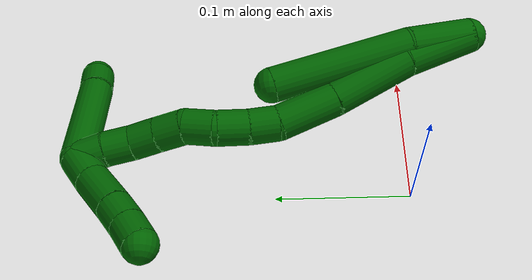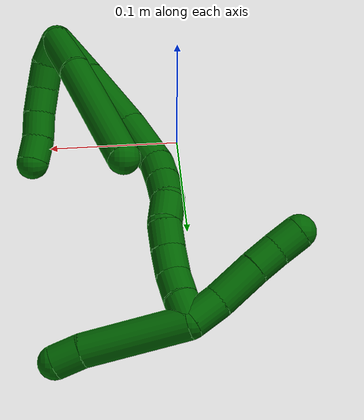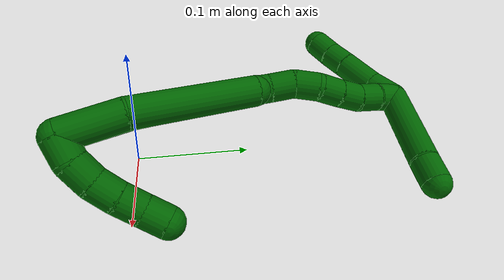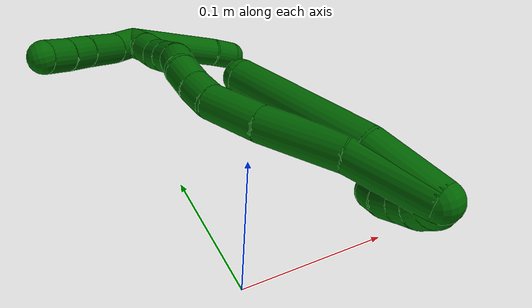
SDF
<sdf version="1.7">
 <world name="default">
  <model name="6">
   <static>0</static>
   <link name="6">
    <collision name="collision-cylinder-e_1_2_8">
     <pose>-0.01382 0.018517 -0.006107 -1.88937 -0.616608 0.829616</pose>
     <geometry><cylinder><radius>0.0125</radius><length>0.047798</length></cylinder></geometry>
     <surface>
      <friction><ode><mu>1.16</mu><mu2>1.16</mu2><slip1>0</slip1><slip2>0</slip2></ode></friction>
      <contact><ode><kp>1e+06</kp><kd>1</kd><max_vel>0</max_vel><min_depth>0.001</min_depth></ode></contact>
     </surface>
    </collision>
    <visual name="visual-cylinder-e_1_2_8">
     <pose>-0.01382 0.018517 -0.006107 -1.88937 -0.616608 0.829616</pose>
     <geometry><cylinder><radius>0.0125</radius><length>0.047798</length></cylinder></geometry>
     <material><ambient>0 0.392157 0.003922 1</ambient></material>
    </visual>
    <collision name="collision-cylinder-e_2_8_6">
     <pose>-0.049567 0.08053 -0.02766 -1.91203 -0.443489 0.618154</pose>
     <geometry><cylinder><radius>0.0125</radius><length>0.102202</length></cylinder></geometry>
     <surface>
      <friction><ode><mu>1.16</mu><mu2>1.16</mu2><slip1>0</slip1><slip2>0</slip2></ode></friction>
      <contact><ode><kp>1e+06</kp><kd>1</kd><max_vel>0</max_vel><min_depth>0.001</min_depth></ode></contact>
     </surface>
    </collision>
    <visual name="visual-cylinder-e_2_8_6">
     <pose>-0.049567 0.08053 -0.02766 -1.91203 -0.443489 0.618154</pose>
     <geometry><cylinder><radius>0.0125</radius><length>0.102202</length></cylinder></geometry>
     <material><ambient>0 0.392157 0.003922 1</ambient></material>
    </visual>
    <collision name="collision-cylinder-e_1_2_9">
     <pose>0.00557 0.007376 0.003817 -1.09328 0.590763 -0.366162</pose>
     <geometry><cylinder><radius>0.0125</radius><length>0.02</length></cylinder></geometry>
     <surface>
      <friction><ode><mu>1.16</mu><mu2>1.16</mu2><slip1>0</slip1><slip2>0</slip2></ode></friction>
      <contact><ode><kp>1e+06</kp><kd>1</kd><max_vel>0</max_vel><min_depth>0.001</min_depth></ode></contact>
     </surface>
    </collision>
    <visual name="visual-cylinder-e_1_2_9">
     <pose>0.00557 0.007376 0.003817 -1.09328 0.590763 -0.366162</pose>
     <geometry><cylinder><radius>0.0125</radius><length>0.02</length></cylinder></geometry>
     <material><ambient>0 0.392157 0.003922 1</ambient></material>
    </visual>
    <collision name="collision-cylinder-e_2_9_10">
     <pose>0.015019 0.023811 0.009336 -1.38498 0.398379 -0.331829</pose>
     <geometry><cylinder><radius>0.0125</radius><length>0.02</length></cylinder></geometry>
     <surface>
      <friction><ode><mu>1.16</mu><mu2>1.16</mu2><slip1>0</slip1><slip2>0</slip2></ode></friction>
      <contact><ode><kp>1e+06</kp><kd>1</kd><max_vel>0</max_vel><min_depth>0.001</min_depth></ode></contact>
     </surface>
    </collision>
    <visual name="visual-cylinder-e_2_9_10">
     <pose>0.015019 0.023811 0.009336 -1.38498 0.398379 -0.331829</pose>
     <geometry><cylinder><radius>0.0125</radius><length>0.02</length></cylinder></geometry>
     <material><ambient>0 0.392157 0.003922 1</ambient></material>
    </visual>
    <collision name="collision-cylinder-e_3_10_11">
     <pose>0.020766 0.042574 0.012565 -1.41489 0.187878 -0.160781</pose>
     <geometry><cylinder><radius>0.0125</radius><length>0.02</length></cylinder></geometry>
     <surface>
      <friction><ode><mu>1.16</mu><mu2>1.16</mu2><slip1>0</slip1><slip2>0</slip2></ode></friction>
      <contact><ode><kp>1e+06</kp><kd>1</kd><max_vel>0</max_vel><min_depth>0.001</min_depth></ode></contact>
     </surface>
    </collision>
    <visual name="visual-cylinder-e_3_10_11">
     <pose>0.020766 0.042574 0.012565 -1.41489 0.187878 -0.160781</pose>
     <geometry><cylinder><radius>0.0125</radius><length>0.02</length></cylinder></geometry>
     <material><ambient>0 0.392157 0.003922 1</ambient></material>
    </visual>
    <collision name="collision-cylinder-e_4_11_12">
     <pose>0.024031 0.062166 0.014619 -1.51735 0.140131 -0.132857</pose>
     <geometry><cylinder><radius>0.0125</radius><length>0.02</length></cylinder></geometry>
     <surface>
      <friction><ode><mu>1.16</mu><mu2>1.16</mu2><slip1>0</slip1><slip2>0</slip2></ode></friction>
      <contact><ode><kp>1e+06</kp><kd>1</kd><max_vel>0</max_vel><min_depth>0.001</min_depth></ode></contact>
     </surface>
    </collision>
    <visual name="visual-cylinder-e_4_11_12">
     <pose>0.024031 0.062166 0.014619 -1.51735 0.140131 -0.132857</pose>
     <geometry><cylinder><radius>0.0125</radius><length>0.02</length></cylinder></geometry>
     <material><ambient>0 0.392157 0.003922 1</ambient></material>
    </visual>
    <collision name="collision-cylinder-e_5_12_5">
     <pose>0.025724 0.081793 0.017401 -1.34343 0.029712 -0.023623</pose>
     <geometry><cylinder><radius>0.0125</radius><length>0.02</length></cylinder></geometry>
     <surface>
      <friction><ode><mu>1.16</mu><mu2>1.16</mu2><slip1>0</slip1><slip2>0</slip2></ode></friction>
      <contact><ode><kp>1e+06</kp><kd>1</kd><max_vel>0</max_vel><min_depth>0.001</min_depth></ode></contact>
     </surface>
    </collision>
    <visual name="visual-cylinder-e_5_12_5">
     <pose>0.025724 0.081793 0.017401 -1.34343 0.029712 -0.023623</pose>
     <geometry><cylinder><radius>0.0125</radius><length>0.02</length></cylinder></geometry>
     <material><ambient>0 0.392157 0.003922 1</ambient></material>
    </visual>
    <collision name="collision-cylinder-e_1_2_13">
     <pose>-0.012612 0.020641 -0.011119 -2.06492 -0.493525 0.798339</pose>
     <geometry><cylinder><radius>0.0125</radius><length>0.053245</length></cylinder></geometry>
     <surface>
      <friction><ode><mu>1.16</mu><mu2>1.16</mu2><slip1>0</slip1><slip2>0</slip2></ode></friction>
      <contact><ode><kp>1e+06</kp><kd>1</kd><max_vel>0</max_vel><min_depth>0.001</min_depth></ode></contact>
     </surface>
    </collision>
    <visual name="visual-cylinder-e_1_2_13">
     <pose>-0.012612 0.020641 -0.011119 -2.06492 -0.493525 0.798339</pose>
     <geometry><cylinder><radius>0.0125</radius><length>0.053245</length></cylinder></geometry>
     <material><ambient>0 0.392157 0.003922 1</ambient></material>
    </visual>
    <collision name="collision-cylinder-e_2_13_14">
     <pose>-0.035237 0.065189 -0.036489 -2.10836 -0.345371 0.595806</pose>
     <geometry><cylinder><radius>0.0125</radius><length>0.059157</length></cylinder></geometry>
     <surface>
      <friction><ode><mu>1.16</mu><mu2>1.16</mu2><slip1>0</slip1><slip2>0</slip2></ode></friction>
      <contact><ode><kp>1e+06</kp><kd>1</kd><max_vel>0</max_vel><min_depth>0.001</min_depth></ode></contact>
     </surface>
    </collision>
    <visual name="visual-cylinder-e_2_13_14">
     <pose>-0.035237 0.065189 -0.036489 -2.10836 -0.345371 0.595806</pose>
     <geometry><cylinder><radius>0.0125</radius><length>0.059157</length></cylinder></geometry>
     <material><ambient>0 0.392157 0.003922 1</ambient></material>
    </visual>
    <collision name="collision-cylinder-e_3_14_15">
     <pose>-0.053381 0.106885 -0.05941 -2.02424 -0.389777 0.611736</pose>
     <geometry><cylinder><radius>0.0125</radius><length>0.04279</length></cylinder></geometry>
     <surface>
      <friction><ode><mu>1.16</mu><mu2>1.16</mu2><slip1>0</slip1><slip2>0</slip2></ode></friction>
      <contact><ode><kp>1e+06</kp><kd>1</kd><max_vel>0</max_vel><min_depth>0.001</min_depth></ode></contact>
     </surface>
    </collision>
    <visual name="visual-cylinder-e_3_14_15">
     <pose>-0.053381 0.106885 -0.05941 -2.02424 -0.389777 0.611736</pose>
     <geometry><cylinder><radius>0.0125</radius><length>0.04279</length></cylinder></geometry>
     <material><ambient>0 0.392157 0.003922 1</ambient></material>
    </visual>
    <collision name="collision-cylinder-e_4_15_16">
     <pose>-0.066513 0.133563 -0.069595 -1.73969 -0.506621 0.595275</pose>
     <geometry><cylinder><radius>0.0125</radius><length>0.020621</length></cylinder></geometry>
     <surface>
      <friction><ode><mu>1.16</mu><mu2>1.16</mu2><slip1>0</slip1><slip2>0</slip2></ode></friction>
      <contact><ode><kp>1e+06</kp><kd>1</kd><max_vel>0</max_vel><min_depth>0.001</min_depth></ode></contact>
     </surface>
    </collision>
    <visual name="visual-cylinder-e_4_15_16">
     <pose>-0.066513 0.133563 -0.069595 -1.73969 -0.506621 0.595275</pose>
     <geometry><cylinder><radius>0.0125</radius><length>0.020621</length></cylinder></geometry>
     <material><ambient>0 0.392157 0.003922 1</ambient></material>
    </visual>
    <collision name="collision-cylinder-e_5_16_17">
     <pose>-0.07747 0.151788 -0.071921 -1.65737 -0.565854 0.614052</pose>
     <geometry><cylinder><radius>0.0125</radius><length>0.022209</length></cylinder></geometry>
     <surface>
      <friction><ode><mu>1.16</mu><mu2>1.16</mu2><slip1>0</slip1><slip2>0</slip2></ode></friction>
      <contact><ode><kp>1e+06</kp><kd>1</kd><max_vel>0</max_vel><min_depth>0.001</min_depth></ode></contact>
     </surface>
    </collision>
    <visual name="visual-cylinder-e_5_16_17">
     <pose>-0.07747 0.151788 -0.071921 -1.65737 -0.565854 0.614052</pose>
     <geometry><cylinder><radius>0.0125</radius><length>0.022209</length></cylinder></geometry>
     <material><ambient>0 0.392157 0.003922 1</ambient></material>
    </visual>
    <collision name="collision-cylinder-e_6_17_18">
     <pose>-0.086808 0.171253 -0.070883 -1.39024 -0.317672 0.265611</pose>
     <geometry><cylinder><radius>0.0125</radius><length>0.021671</length></cylinder></geometry>
     <surface>
      <friction><ode><mu>1.16</mu><mu2>1.16</mu2><slip1>0</slip1><slip2>0</slip2></ode></friction>
      <contact><ode><kp>1e+06</kp><kd>1</kd><max_vel>0</max_vel><min_depth>0.001</min_depth></ode></contact>
     </surface>
    </collision>
    <visual name="visual-cylinder-e_6_17_18">
     <pose>-0.086808 0.171253 -0.070883 -1.39024 -0.317672 0.265611</pose>
     <geometry><cylinder><radius>0.0125</radius><length>0.021671</length></cylinder></geometry>
     <material><ambient>0 0.392157 0.003922 1</ambient></material>
    </visual>
    <collision name="collision-cylinder-e_7_18_19">
     <pose>-0.09112 0.191359 -0.069876 -1.65491 -0.092387 0.100491</pose>
     <geometry><cylinder><radius>0.0125</radius><length>0.020117</length></cylinder></geometry>
     <surface>
      <friction><ode><mu>1.16</mu><mu2>1.16</mu2><slip1>0</slip1><slip2>0</slip2></ode></friction>
      <contact><ode><kp>1e+06</kp><kd>1</kd><max_vel>0</max_vel><min_depth>0.001</min_depth></ode></contact>
     </surface>
    </collision>
    <visual name="visual-cylinder-e_7_18_19">
     <pose>-0.09112 0.191359 -0.069876 -1.65491 -0.092387 0.100491</pose>
     <geometry><cylinder><radius>0.0125</radius><length>0.020117</length></cylinder></geometry>
     <material><ambient>0 0.392157 0.003922 1</ambient></material>
    </visual>
    <collision name="collision-cylinder-e_8_19_20">
     <pose>-0.093328 0.211221 -0.072001 -1.69993 -0.127727 0.145328</pose>
     <geometry><cylinder><radius>0.0125</radius><length>0.020093</length></cylinder></geometry>
     <surface>
      <friction><ode><mu>1.16</mu><mu2>1.16</mu2><slip1>0</slip1><slip2>0</slip2></ode></friction>
      <contact><ode><kp>1e+06</kp><kd>1</kd><max_vel>0</max_vel><min_depth>0.001</min_depth></ode></contact>
     </surface>
    </collision>
    <visual name="visual-cylinder-e_8_19_20">
     <pose>-0.093328 0.211221 -0.072001 -1.69993 -0.127727 0.145328</pose>
     <geometry><cylinder><radius>0.0125</radius><length>0.020093</length></cylinder></geometry>
     <material><ambient>0 0.392157 0.003922 1</ambient></material>
    </visual>
    <collision name="collision-cylinder-e_9_20_21">
     <pose>-0.098158 0.230281 -0.075182 -1.77473 -0.362088 0.442208</pose>
     <geometry><cylinder><radius>0.0125</radius><length>0.020045</length></cylinder></geometry>
     <surface>
      <friction><ode><mu>1.16</mu><mu2>1.16</mu2><slip1>0</slip1><slip2>0</slip2></ode></friction>
      <contact><ode><kp>1e+06</kp><kd>1</kd><max_vel>0</max_vel><min_depth>0.001</min_depth></ode></contact>
     </surface>
    </collision>
    <visual name="visual-cylinder-e_9_20_21">
     <pose>-0.098158 0.230281 -0.075182 -1.77473 -0.362088 0.442208</pose>
     <geometry><cylinder><radius>0.0125</radius><length>0.020045</length></cylinder></geometry>
     <material><ambient>0 0.392157 0.003922 1</ambient></material>
    </visual>
    <collision name="collision-cylinder-e_10_21_1">
     <pose>-0.10447 0.248744 -0.079668 -1.8426 -0.279018 0.365687</pose>
     <geometry><cylinder><radius>0.0125</radius><length>0.020052</length></cylinder></geometry>
     <surface>
      <friction><ode><mu>1.16</mu><mu2>1.16</mu2><slip1>0</slip1><slip2>0</slip2></ode></friction>
      <contact><ode><kp>1e+06</kp><kd>1</kd><max_vel>0</max_vel><min_depth>0.001</min_depth></ode></contact>
     </surface>
    </collision>
    <visual name="visual-cylinder-e_10_21_1">
     <pose>-0.10447 0.248744 -0.079668 -1.8426 -0.279018 0.365687</pose>
     <geometry><cylinder><radius>0.0125</radius><length>0.020052</length></cylinder></geometry>
     <material><ambient>0 0.392157 0.003922 1</ambient></material>
    </visual>
    <collision name="collision-cylinder-e_1_1_22">
     <pose>-0.107193 0.250691 -0.092219 2.50677 0.003034 0.009236</pose>
     <geometry><cylinder><radius>0.0125</radius><length>0.024747</length></cylinder></geometry>
     <surface>
      <friction><ode><mu>1.16</mu><mu2>1.16</mu2><slip1>0</slip1><slip2>0</slip2></ode></friction>
      <contact><ode><kp>1e+06</kp><kd>1</kd><max_vel>0</max_vel><min_depth>0.001</min_depth></ode></contact>
     </surface>
    </collision>
    <visual name="visual-cylinder-e_1_1_22">
     <pose>-0.107193 0.250691 -0.092219 2.50677 0.003034 0.009236</pose>
     <geometry><cylinder><radius>0.0125</radius><length>0.024747</length></cylinder></geometry>
     <material><ambient>0 0.392157 0.003922 1</ambient></material>
    </visual>
    <collision name="collision-cylinder-e_2_22_23">
     <pose>-0.109009 0.232085 -0.115012 2.42095 -0.108069 -0.285162</pose>
     <geometry><cylinder><radius>0.0125</radius><length>0.034353</length></cylinder></geometry>
     <surface>
      <friction><ode><mu>1.16</mu><mu2>1.16</mu2><slip1>0</slip1><slip2>0</slip2></ode></friction>
      <contact><ode><kp>1e+06</kp><kd>1</kd><max_vel>0</max_vel><min_depth>0.001</min_depth></ode></contact>
     </surface>
    </collision>
    <visual name="visual-cylinder-e_2_22_23">
     <pose>-0.109009 0.232085 -0.115012 2.42095 -0.108069 -0.285162</pose>
     <geometry><cylinder><radius>0.0125</radius><length>0.034353</length></cylinder></geometry>
     <material><ambient>0 0.392157 0.003922 1</ambient></material>
    </visual>
    <collision name="collision-cylinder-e_3_23_24">
     <pose>-0.111673 0.214495 -0.135694 2.46365 -0.080333 -0.226985</pose>
     <geometry><cylinder><radius>0.0125</radius><length>0.020227</length></cylinder></geometry>
     <surface>
      <friction><ode><mu>1.16</mu><mu2>1.16</mu2><slip1>0</slip1><slip2>0</slip2></ode></friction>
      <contact><ode><kp>1e+06</kp><kd>1</kd><max_vel>0</max_vel><min_depth>0.001</min_depth></ode></contact>
     </surface>
    </collision>
    <visual name="visual-cylinder-e_3_23_24">
     <pose>-0.111673 0.214495 -0.135694 2.46365 -0.080333 -0.226985</pose>
     <geometry><cylinder><radius>0.0125</radius><length>0.020227</length></cylinder></geometry>
     <material><ambient>0 0.392157 0.003922 1</ambient></material>
    </visual>
    <collision name="collision-cylinder-e_4_24_4">
     <pose>-0.113808 0.202088 -0.151797 2.50625 -0.128374 -0.386093</pose>
     <geometry><cylinder><radius>0.0125</radius><length>0.020674</length></cylinder></geometry>
     <surface>
      <friction><ode><mu>1.16</mu><mu2>1.16</mu2><slip1>0</slip1><slip2>0</slip2></ode></friction>
      <contact><ode><kp>1e+06</kp><kd>1</kd><max_vel>0</max_vel><min_depth>0.001</min_depth></ode></contact>
     </surface>
    </collision>
    <visual name="visual-cylinder-e_4_24_4">
     <pose>-0.113808 0.202088 -0.151797 2.50625 -0.128374 -0.386093</pose>
     <geometry><cylinder><radius>0.0125</radius><length>0.020674</length></cylinder></geometry>
     <material><ambient>0 0.392157 0.003922 1</ambient></material>
    </visual>
    <collision name="collision-cylinder-e_1_1_25">
     <pose>-0.093544 0.263977 -0.045849 -0.161964 0.355273 -0.029139</pose>
     <geometry><cylinder><radius>0.0125</radius><length>0.078693</length></cylinder></geometry>
     <surface>
      <friction><ode><mu>1.16</mu><mu2>1.16</mu2><slip1>0</slip1><slip2>0</slip2></ode></friction>
      <contact><ode><kp>1e+06</kp><kd>1</kd><max_vel>0</max_vel><min_depth>0.001</min_depth></ode></contact>
     </surface>
    </collision>
    <visual name="visual-cylinder-e_1_1_25">
     <pose>-0.093544 0.263977 -0.045849 -0.161964 0.355273 -0.029139</pose>
     <geometry><cylinder><radius>0.0125</radius><length>0.078693</length></cylinder></geometry>
     <material><ambient>0 0.392157 0.003922 1</ambient></material>
    </visual>
    <collision name="collision-cylinder-e_2_25_3">
     <pose>-0.075773 0.272938 -7.6e-05 -0.311079 0.393548 -0.062499</pose>
     <geometry><cylinder><radius>0.0125</radius><length>0.021307</length></cylinder></geometry>
     <surface>
      <friction><ode><mu>1.16</mu><mu2>1.16</mu2><slip1>0</slip1><slip2>0</slip2></ode></friction>
      <contact><ode><kp>1e+06</kp><kd>1</kd><max_vel>0</max_vel><min_depth>0.001</min_depth></ode></contact>
     </surface>
    </collision>
    <visual name="visual-cylinder-e_2_25_3">
     <pose>-0.075773 0.272938 -7.6e-05 -0.311079 0.393548 -0.062499</pose>
     <geometry><cylinder><radius>0.0125</radius><length>0.021307</length></cylinder></geometry>
     <material><ambient>0 0.392157 0.003922 1</ambient></material>
    </visual>
    <collision name="collision-sphere-3">
     <pose>-0.071687 0.275949 0.009291 0 -0 0</pose>
     <geometry><sphere><radius>0.0125</radius></sphere></geometry>
     <surface>
      <friction><ode><mu>1.16</mu><mu2>1.16</mu2><slip1>0</slip1><slip2>0</slip2></ode></friction>
      <contact><ode><kp>1e+06</kp><kd>1</kd><max_vel>0</max_vel><min_depth>0.001</min_depth></ode></contact>
     </surface>
    </collision>
    <visual name="visual-sphere-3">
     <pose>-0.071687 0.275949 0.009291 0 -0 0</pose>
     <geometry><sphere><radius>0.0125</radius></sphere></geometry>
     <material><ambient>0 0.392157 0.003922 1</ambient></material>
    </visual>
    <collision name="collision-sphere-25">
     <pose>-0.079858 0.269926 -0.009443 0 -0 0</pose>
     <geometry><sphere><radius>0.0125</radius></sphere></geometry>
     <surface>
      <friction><ode><mu>1.16</mu><mu2>1.16</mu2><slip1>0</slip1><slip2>0</slip2></ode></friction>
      <contact><ode><kp>1e+06</kp><kd>1</kd><max_vel>0</max_vel><min_depth>0.001</min_depth></ode></contact>
     </surface>
    </collision>
    <visual name="visual-sphere-25">
     <pose>-0.079858 0.269926 -0.009443 0 -0 0</pose>
     <geometry><sphere><radius>0.0125</radius></sphere></geometry>
     <material><ambient>0 0.392157 0.003922 1</ambient></material>
    </visual>
    <collision name="collision-sphere-4">
     <pose>-0.115131 0.196004 -0.160049 0 -0 0</pose>
     <geometry><sphere><radius>0.0125</radius></sphere></geometry>
     <surface>
      <friction><ode><mu>1.16</mu><mu2>1.16</mu2><slip1>0</slip1><slip2>0</slip2></ode></friction>
      <contact><ode><kp>1e+06</kp><kd>1</kd><max_vel>0</max_vel><min_depth>0.001</min_depth></ode></contact>
     </surface>
    </collision>
    <visual name="visual-sphere-4">
     <pose>-0.115131 0.196004 -0.160049 0 -0 0</pose>
     <geometry><sphere><radius>0.0125</radius></sphere></geometry>
     <material><ambient>0 0.392157 0.003922 1</ambient></material>
    </visual>
    <collision name="collision-sphere-24">
     <pose>-0.112484 0.208172 -0.143546 0 -0 0</pose>
     <geometry><sphere><radius>0.0125</radius></sphere></geometry>
     <surface>
      <friction><ode><mu>1.16</mu><mu2>1.16</mu2><slip1>0</slip1><slip2>0</slip2></ode></friction>
      <contact><ode><kp>1e+06</kp><kd>1</kd><max_vel>0</max_vel><min_depth>0.001</min_depth></ode></contact>
     </surface>
    </collision>
    <visual name="visual-sphere-24">
     <pose>-0.112484 0.208172 -0.143546 0 -0 0</pose>
     <geometry><sphere><radius>0.0125</radius></sphere></geometry>
     <material><ambient>0 0.392157 0.003922 1</ambient></material>
    </visual>
    <collision name="collision-sphere-23">
     <pose>-0.110861 0.220817 -0.127843 0 -0 0</pose>
     <geometry><sphere><radius>0.0125</radius></sphere></geometry>
     <surface>
      <friction><ode><mu>1.16</mu><mu2>1.16</mu2><slip1>0</slip1><slip2>0</slip2></ode></friction>
      <contact><ode><kp>1e+06</kp><kd>1</kd><max_vel>0</max_vel><min_depth>0.001</min_depth></ode></contact>
     </surface>
    </collision>
    <visual name="visual-sphere-23">
     <pose>-0.110861 0.220817 -0.127843 0 -0 0</pose>
     <geometry><sphere><radius>0.0125</radius></sphere></geometry>
     <material><ambient>0 0.392157 0.003922 1</ambient></material>
    </visual>
    <collision name="collision-sphere-22">
     <pose>-0.107156 0.243353 -0.102181 0 -0 0</pose>
     <geometry><sphere><radius>0.0125</radius></sphere></geometry>
     <surface>
      <friction><ode><mu>1.16</mu><mu2>1.16</mu2><slip1>0</slip1><slip2>0</slip2></ode></friction>
      <contact><ode><kp>1e+06</kp><kd>1</kd><max_vel>0</max_vel><min_depth>0.001</min_depth></ode></contact>
     </surface>
    </collision>
    <visual name="visual-sphere-22">
     <pose>-0.107156 0.243353 -0.102181 0 -0 0</pose>
     <geometry><sphere><radius>0.0125</radius></sphere></geometry>
     <material><ambient>0 0.392157 0.003922 1</ambient></material>
    </visual>
    <collision name="collision-sphere-1">
     <pose>-0.107231 0.258029 -0.082256 0 -0 0</pose>
     <geometry><sphere><radius>0.0125</radius></sphere></geometry>
     <surface>
      <friction><ode><mu>1.16</mu><mu2>1.16</mu2><slip1>0</slip1><slip2>0</slip2></ode></friction>
      <contact><ode><kp>1e+06</kp><kd>1</kd><max_vel>0</max_vel><min_depth>0.001</min_depth></ode></contact>
     </surface>
    </collision>
    <visual name="visual-sphere-1">
     <pose>-0.107231 0.258029 -0.082256 0 -0 0</pose>
     <geometry><sphere><radius>0.0125</radius></sphere></geometry>
     <material><ambient>0 0.392157 0.003922 1</ambient></material>
    </visual>
    <collision name="collision-sphere-21">
     <pose>-0.101708 0.239459 -0.077081 0 -0 0</pose>
     <geometry><sphere><radius>0.0125</radius></sphere></geometry>
     <surface>
      <friction><ode><mu>1.16</mu><mu2>1.16</mu2><slip1>0</slip1><slip2>0</slip2></ode></friction>
      <contact><ode><kp>1e+06</kp><kd>1</kd><max_vel>0</max_vel><min_depth>0.001</min_depth></ode></contact>
     </surface>
    </collision>
    <visual name="visual-sphere-21">
     <pose>-0.101708 0.239459 -0.077081 0 -0 0</pose>
     <geometry><sphere><radius>0.0125</radius></sphere></geometry>
     <material><ambient>0 0.392157 0.003922 1</ambient></material>
    </visual>
    <collision name="collision-sphere-11">
     <pose>0.022634 0.052279 0.01409 0 -0 0</pose>
     <geometry><sphere><radius>0.0125</radius></sphere></geometry>
     <surface>
      <friction><ode><mu>1.16</mu><mu2>1.16</mu2><slip1>0</slip1><slip2>0</slip2></ode></friction>
      <contact><ode><kp>1e+06</kp><kd>1</kd><max_vel>0</max_vel><min_depth>0.001</min_depth></ode></contact>
     </surface>
    </collision>
    <visual name="visual-sphere-11">
     <pose>0.022634 0.052279 0.01409 0 -0 0</pose>
     <geometry><sphere><radius>0.0125</radius></sphere></geometry>
     <material><ambient>0 0.392157 0.003922 1</ambient></material>
    </visual>
    <collision name="collision-sphere-10">
     <pose>0.018898 0.032869 0.011039 0 -0 0</pose>
     <geometry><sphere><radius>0.0125</radius></sphere></geometry>
     <surface>
      <friction><ode><mu>1.16</mu><mu2>1.16</mu2><slip1>0</slip1><slip2>0</slip2></ode></friction>
      <contact><ode><kp>1e+06</kp><kd>1</kd><max_vel>0</max_vel><min_depth>0.001</min_depth></ode></contact>
     </surface>
    </collision>
    <visual name="visual-sphere-10">
     <pose>0.018898 0.032869 0.011039 0 -0 0</pose>
     <geometry><sphere><radius>0.0125</radius></sphere></geometry>
     <material><ambient>0 0.392157 0.003922 1</ambient></material>
    </visual>
    <collision name="collision-sphere-6">
     <pose>-0.071494 0.124026 -0.043107 0 -0 0</pose>
     <geometry><sphere><radius>0.0125</radius></sphere></geometry>
     <surface>
      <friction><ode><mu>1.16</mu><mu2>1.16</mu2><slip1>0</slip1><slip2>0</slip2></ode></friction>
      <contact><ode><kp>1e+06</kp><kd>1</kd><max_vel>0</max_vel><min_depth>0.001</min_depth></ode></contact>
     </surface>
    </collision>
    <visual name="visual-sphere-6">
     <pose>-0.071494 0.124026 -0.043107 0 -0 0</pose>
     <geometry><sphere><radius>0.0125</radius></sphere></geometry>
     <material><ambient>0 0.392157 0.003922 1</ambient></material>
    </visual>
    <collision name="collision-sphere-9">
     <pose>0.01114 0.014752 0.007634 0 -0 0</pose>
     <geometry><sphere><radius>0.0125</radius></sphere></geometry>
     <surface>
      <friction><ode><mu>1.16</mu><mu2>1.16</mu2><slip1>0</slip1><slip2>0</slip2></ode></friction>
      <contact><ode><kp>1e+06</kp><kd>1</kd><max_vel>0</max_vel><min_depth>0.001</min_depth></ode></contact>
     </surface>
    </collision>
    <visual name="visual-sphere-9">
     <pose>0.01114 0.014752 0.007634 0 -0 0</pose>
     <geometry><sphere><radius>0.0125</radius></sphere></geometry>
     <material><ambient>0 0.392157 0.003922 1</ambient></material>
    </visual>
    <collision name="collision-sphere-2">
     <geometry><sphere><radius>0.0125</radius></sphere></geometry>
     <surface>
      <friction><ode><mu>1.16</mu><mu2>1.16</mu2><slip1>0</slip1><slip2>0</slip2></ode></friction>
      <contact><ode><kp>1e+06</kp><kd>1</kd><max_vel>0</max_vel><min_depth>0.001</min_depth></ode></contact>
     </surface>
    </collision>
    <visual name="visual-sphere-2">
     <geometry><sphere><radius>0.0125</radius></sphere></geometry>
     <material><ambient>0 0.392157 0.003922 1</ambient></material>
    </visual>
    <collision name="collision-sphere-19">
     <pose>-0.092048 0.201339 -0.070718 0 -0 0</pose>
     <geometry><sphere><radius>0.0125</radius></sphere></geometry>
     <surface>
      <friction><ode><mu>1.16</mu><mu2>1.16</mu2><slip1>0</slip1><slip2>0</slip2></ode></friction>
      <contact><ode><kp>1e+06</kp><kd>1</kd><max_vel>0</max_vel><min_depth>0.001</min_depth></ode></contact>
     </surface>
    </collision>
    <visual name="visual-sphere-19">
     <pose>-0.092048 0.201339 -0.070718 0 -0 0</pose>
     <geometry><sphere><radius>0.0125</radius></sphere></geometry>
     <material><ambient>0 0.392157 0.003922 1</ambient></material>
    </visual>
    <collision name="collision-sphere-8">
     <pose>-0.02764 0.037034 -0.012214 0 -0 0</pose>
     <geometry><sphere><radius>0.0125</radius></sphere></geometry>
     <surface>
      <friction><ode><mu>1.16</mu><mu2>1.16</mu2><slip1>0</slip1><slip2>0</slip2></ode></friction>
      <contact><ode><kp>1e+06</kp><kd>1</kd><max_vel>0</max_vel><min_depth>0.001</min_depth></ode></contact>
     </surface>
    </collision>
    <visual name="visual-sphere-8">
     <pose>-0.02764 0.037034 -0.012214 0 -0 0</pose>
     <geometry><sphere><radius>0.0125</radius></sphere></geometry>
     <material><ambient>0 0.392157 0.003922 1</ambient></material>
    </visual>
    <collision name="collision-sphere-12">
     <pose>0.025427 0.072054 0.015148 0 -0 0</pose>
     <geometry><sphere><radius>0.0125</radius></sphere></geometry>
     <surface>
      <friction><ode><mu>1.16</mu><mu2>1.16</mu2><slip1>0</slip1><slip2>0</slip2></ode></friction>
      <contact><ode><kp>1e+06</kp><kd>1</kd><max_vel>0</max_vel><min_depth>0.001</min_depth></ode></contact>
     </surface>
    </collision>
    <visual name="visual-sphere-12">
     <pose>0.025427 0.072054 0.015148 0 -0 0</pose>
     <geometry><sphere><radius>0.0125</radius></sphere></geometry>
     <material><ambient>0 0.392157 0.003922 1</ambient></material>
    </visual>
    <collision name="collision-sphere-5">
     <pose>0.026021 0.091531 0.019654 0 -0 0</pose>
     <geometry><sphere><radius>0.0125</radius></sphere></geometry>
     <surface>
      <friction><ode><mu>1.16</mu><mu2>1.16</mu2><slip1>0</slip1><slip2>0</slip2></ode></friction>
      <contact><ode><kp>1e+06</kp><kd>1</kd><max_vel>0</max_vel><min_depth>0.001</min_depth></ode></contact>
     </surface>
    </collision>
    <visual name="visual-sphere-5">
     <pose>0.026021 0.091531 0.019654 0 -0 0</pose>
     <geometry><sphere><radius>0.0125</radius></sphere></geometry>
     <material><ambient>0 0.392157 0.003922 1</ambient></material>
    </visual>
    <collision name="collision-sphere-13">
     <pose>-0.025224 0.041282 -0.022238 0 -0 0</pose>
     <geometry><sphere><radius>0.0125</radius></sphere></geometry>
     <surface>
      <friction><ode><mu>1.16</mu><mu2>1.16</mu2><slip1>0</slip1><slip2>0</slip2></ode></friction>
      <contact><ode><kp>1e+06</kp><kd>1</kd><max_vel>0</max_vel><min_depth>0.001</min_depth></ode></contact>
     </surface>
    </collision>
    <visual name="visual-sphere-13">
     <pose>-0.025224 0.041282 -0.022238 0 -0 0</pose>
     <geometry><sphere><radius>0.0125</radius></sphere></geometry>
     <material><ambient>0 0.392157 0.003922 1</ambient></material>
    </visual>
    <collision name="collision-sphere-14">
     <pose>-0.045251 0.089095 -0.050741 0 -0 0</pose>
     <geometry><sphere><radius>0.0125</radius></sphere></geometry>
     <surface>
      <friction><ode><mu>1.16</mu><mu2>1.16</mu2><slip1>0</slip1><slip2>0</slip2></ode></friction>
      <contact><ode><kp>1e+06</kp><kd>1</kd><max_vel>0</max_vel><min_depth>0.001</min_depth></ode></contact>
     </surface>
    </collision>
    <visual name="visual-sphere-14">
     <pose>-0.045251 0.089095 -0.050741 0 -0 0</pose>
     <geometry><sphere><radius>0.0125</radius></sphere></geometry>
     <material><ambient>0 0.392157 0.003922 1</ambient></material>
    </visual>
    <collision name="collision-sphere-15">
     <pose>-0.061511 0.124676 -0.06808 0 -0 0</pose>
     <geometry><sphere><radius>0.0125</radius></sphere></geometry>
     <surface>
      <friction><ode><mu>1.16</mu><mu2>1.16</mu2><slip1>0</slip1><slip2>0</slip2></ode></friction>
      <contact><ode><kp>1e+06</kp><kd>1</kd><max_vel>0</max_vel><min_depth>0.001</min_depth></ode></contact>
     </surface>
    </collision>
    <visual name="visual-sphere-15">
     <pose>-0.061511 0.124676 -0.06808 0 -0 0</pose>
     <geometry><sphere><radius>0.0125</radius></sphere></geometry>
     <material><ambient>0 0.392157 0.003922 1</ambient></material>
    </visual>
    <collision name="collision-sphere-16">
     <pose>-0.071516 0.14245 -0.07111 0 -0 0</pose>
     <geometry><sphere><radius>0.0125</radius></sphere></geometry>
     <surface>
      <friction><ode><mu>1.16</mu><mu2>1.16</mu2><slip1>0</slip1><slip2>0</slip2></ode></friction>
      <contact><ode><kp>1e+06</kp><kd>1</kd><max_vel>0</max_vel><min_depth>0.001</min_depth></ode></contact>
     </surface>
    </collision>
    <visual name="visual-sphere-16">
     <pose>-0.071516 0.14245 -0.07111 0 -0 0</pose>
     <geometry><sphere><radius>0.0125</radius></sphere></geometry>
     <material><ambient>0 0.392157 0.003922 1</ambient></material>
    </visual>
    <collision name="collision-sphere-17">
     <pose>-0.083424 0.161127 -0.072731 0 -0 0</pose>
     <geometry><sphere><radius>0.0125</radius></sphere></geometry>
     <surface>
      <friction><ode><mu>1.16</mu><mu2>1.16</mu2><slip1>0</slip1><slip2>0</slip2></ode></friction>
      <contact><ode><kp>1e+06</kp><kd>1</kd><max_vel>0</max_vel><min_depth>0.001</min_depth></ode></contact>
     </surface>
    </collision>
    <visual name="visual-sphere-17">
     <pose>-0.083424 0.161127 -0.072731 0 -0 0</pose>
     <geometry><sphere><radius>0.0125</radius></sphere></geometry>
     <material><ambient>0 0.392157 0.003922 1</ambient></material>
    </visual>
    <collision name="collision-sphere-18">
     <pose>-0.090192 0.181379 -0.069035 0 -0 0</pose>
     <geometry><sphere><radius>0.0125</radius></sphere></geometry>
     <surface>
      <friction><ode><mu>1.16</mu><mu2>1.16</mu2><slip1>0</slip1><slip2>0</slip2></ode></friction>
      <contact><ode><kp>1e+06</kp><kd>1</kd><max_vel>0</max_vel><min_depth>0.001</min_depth></ode></contact>
     </surface>
    </collision>
    <visual name="visual-sphere-18">
     <pose>-0.090192 0.181379 -0.069035 0 -0 0</pose>
     <geometry><sphere><radius>0.0125</radius></sphere></geometry>
     <material><ambient>0 0.392157 0.003922 1</ambient></material>
    </visual>
    <collision name="collision-sphere-20">
     <pose>-0.094608 0.221102 -0.073284 0 -0 0</pose>
     <geometry><sphere><radius>0.0125</radius></sphere></geometry>
     <surface>
      <friction><ode><mu>1.16</mu><mu2>1.16</mu2><slip1>0</slip1><slip2>0</slip2></ode></friction>
      <contact><ode><kp>1e+06</kp><kd>1</kd><max_vel>0</max_vel><min_depth>0.001</min_depth></ode></contact>
     </surface>
    </collision>
    <visual name="visual-sphere-20">
     <pose>-0.094608 0.221102 -0.073284 0 -0 0</pose>
     <geometry><sphere><radius>0.0125</radius></sphere></geometry>
     <material><ambient>0 0.392157 0.003922 1</ambient></material>
    </visual>
    <inertial>
     <pose>-0.055564 0.133086 -0.044677 0 -0 0</pose>
     <mass>0.75</mass>
     <inertia>
      <ixx>0.000241</ixx>
      <ixy>0</ixy>
      <ixz>0</ixz>
      <iyy>0.000143</iyy>
      <iyz>0</iyz>
      <izz>-9.7e-05</izz>
     </inertia>
    </inertial>
   </link>
   <pose>0.090431 -0.042036 0.074849 -1.4343 1.09673 -1.45199</pose>
  </model>
 </world>
</sdf>
